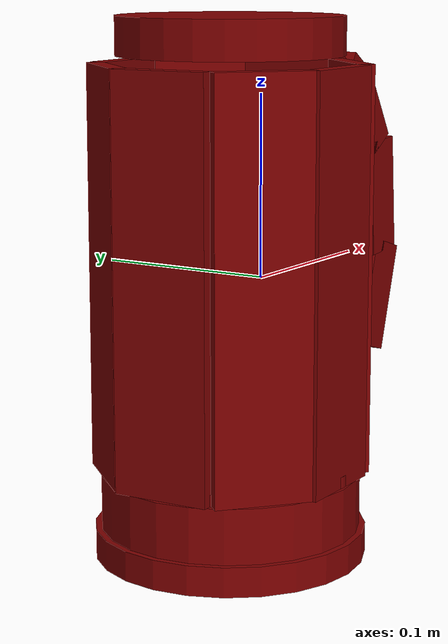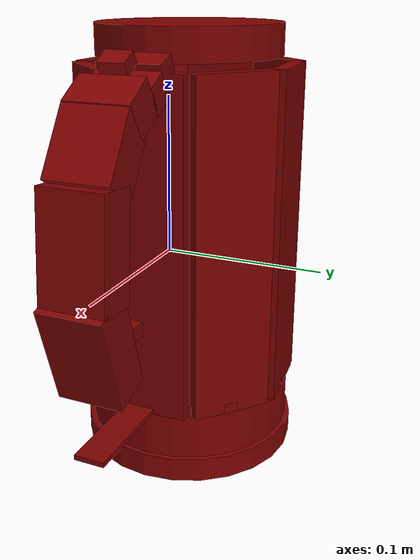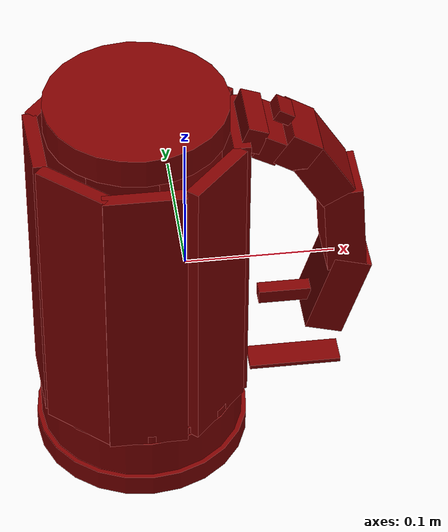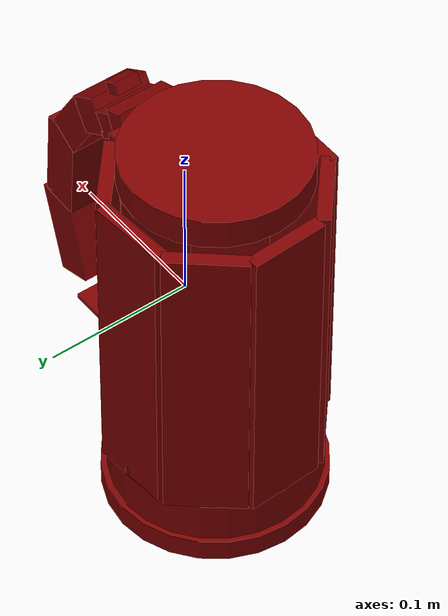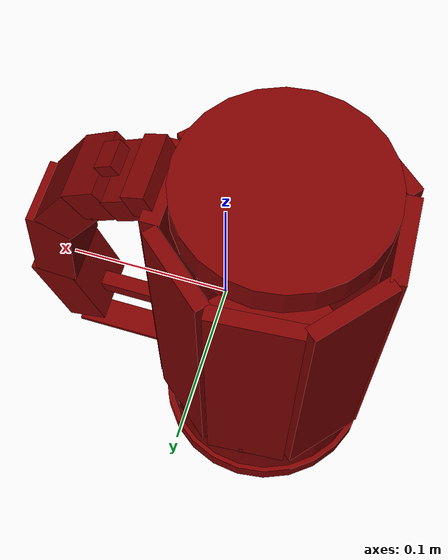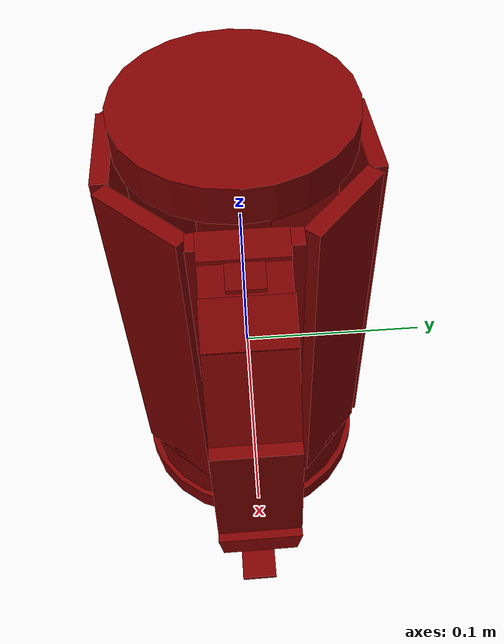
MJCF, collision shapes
<?xml version='1.0' encoding='UTF-8'?>
<mujoco model="model">
  <option timestep="0.002" gravity="0.0 0.0 -9.81"/>
  <compiler angle="radian"/>
  <asset>
    <mesh file="visuals/button_lid.obj" name="button_lid_vis"/>
    <mesh file="visuals/Body001.obj" name="Body001_vis"/>
    <mesh file="visuals/kettle_main.obj" name="kettle_main_vis"/>
    <mesh file="visuals/lid.obj" name="lid_vis"/>
    <mesh file="visuals/switch.obj" name="switch_vis"/>
    <texture file="visuals/T_BC001.png" name="Body001_material" type="2d"/>
    <material name="Body001_material" rgba="1 1 1 1.0" texture="Body001_material" shininess="0.44103819131851196" specular="0.3103448502657381"/>
    <texture file="visuals/T_BC001.png" name="kettle_main_material" type="2d"/>
    <material name="kettle_main_material" rgba="1 1 1 1.0" texture="kettle_main_material" shininess="0.44103819131851196" specular="0.3103448502657381"/>
    <texture file="visuals/T_BC001.png" name="button_lid_material" type="2d"/>
    <material name="button_lid_material" rgba="1 1 1 1.0" texture="button_lid_material" shininess="0.44103819131851196" specular="0.3103448502657381"/>
    <texture file="visuals/T_BC001.png" name="lid_material" type="2d"/>
    <material name="lid_material" rgba="1 1 1 1.0" texture="lid_material" shininess="0.44103819131851196" specular="0.3103448502657381"/>
    <texture file="visuals/T_BC001.png" name="switch_material" type="2d"/>
    <material name="switch_material" rgba="1 1 1 1.0" texture="switch_material" shininess="0.44103819131851196" specular="0.3103448502657381"/>
  </asset>
  <default>
    <default class="visual">
      <geom conaffinity="0" contype="0" group="1" type="mesh"/>
    </default>
    <default class="collision">
      <geom group="0" rgba="0.5 0 0 0.5" density="1.0" solref="0.004 1" solimp="0.998 0.998 0.001"/>
    </default>
    <default class="spawn">
      <geom group="0" rgba="1 1 1 0.5" contype="0" conaffinity="0"/>
      <site group="0" rgba="1 1 1 0.5"/>
    </default>
    <default class="region">
      <geom group="1" conaffinity="0" contype="0" rgba="0 1 0 0" mass="0"/>
    </default>
  </default>
  <worldbody>
    <body>
      <body name="object">
        <geom mesh="Body001_vis" type="mesh" solimp="0.998 0.998 0.001" solref="0.001 1" friction="0.95 0.3 0.1" class="visual" material="Body001_material"/>
        <geom type="cylinder" pos="-0.03099116 0.00000000 -0.13770911" size="0.07322178035974503 0.007990462705492973" quat="1.0 0.0 0.0 0.0" class="collision"/>
        <geom type="cylinder" pos="-0.03099116 0.00000000 -0.11510960" size="0.06989336758852005 0.01493158284574747" quat="1.0 0.0 0.0 0.0" class="collision"/>
        <body name="kettle_main">
          <geom mesh="kettle_main_vis" type="mesh" solimp="0.998 0.998 0.001" solref="0.001 1" friction="0.95 0.3 0.1" class="visual" material="kettle_main_material"/>
          <geom class="collision" type="box" pos="0.04159675 -0.00022555 0.11768026" size="0.008985282853245735 0.020376522094011307 0.0069479867815971375" quat="0.8229597806930542 -4.474678405586019e-09 -0.5680996775627136 -6.885247927357341e-08" name="handle_1"/>
          <geom class="collision" type="box" pos="0.06713136 -0.00006561 -0.03451092" size="0.017660193145275116 0.0049196649342775345 0.004958075936883688" quat="1.0 0.0 0.0 0.0" name="handle_6"/>
          <geom class="collision" type="box" pos="0.07048238 -0.00022555 0.10281562" size="0.012218759395182133 0.020376522094011307 0.011361307464540005" quat="0.8763461709022522 2.5333095621249413e-09 -0.48168182373046875 -6.895119497585256e-08" name="handle_3"/>
          <geom class="collision" type="box" pos="0.08730183 -0.00022556 0.08191373" size="0.012218756601214409 0.020376522094011307 0.02132119983434677" quat="0.9623345732688904 1.800209403768349e-08 -0.2718679904937744 -6.66078676658799e-08" name="handle_4"/>
          <geom class="collision" type="box" pos="0.10350201 -0.00022555 0.03445161" size="0.013097577728331089 0.020376522094011307 0.033003807067871094" quat="0.9993276596069336 3.3238038099625555e-08 -0.036663953214883804 -6.046415990113019e-08" name="handle_main"/>
          <geom class="collision" type="box" pos="0.10100662 -0.00022555 -0.02400314" size="0.013097579590976238 0.020376522094011307 0.031204335391521454" quat="0.9889734387397766 4.380971319051241e-08 0.1480930894613266 -5.330472063747038e-08" name="handle_5"/>
          <geom class="collision" type="box" pos="0.05225657 -0.00022555 0.10820882" size="0.008985282853245735 0.020376522094011307 0.008597247302532196" quat="0.8645140528678894 8.750601909746081e-10 -0.5026086568832397 -6.899210092115027e-08" name="handle_2"/>
          <geom type="box" pos="-0.03311813 -0.06499278 0.00923737" size="0.026498567312955856 0.00454183854162693 0.1083824560046196" quat="1.0 0.0 0.0 0.0" class="collision"/>
          <geom type="box" pos="-0.07539620 -0.04783896 0.00923737" size="0.026498567312955856 0.00454183854162693 0.1083824560046196" quat="0.9364215135574341 0.0 -0.0 -0.3508771061897278" class="collision"/>
          <geom type="box" pos="-0.09635853 -0.00180143 0.00923737" size="0.026498567312955856 0.00454183854162693 0.1083824560046196" quat="0.726161003112793 0.0 -0.0 -0.687524676322937" class="collision"/>
          <geom type="box" pos="-0.07954716 0.04365564 0.00923737" size="0.026498569175601006 0.00454183854162693 0.1083824560046196" quat="0.4175800085067749 0.0 -0.0 -0.9086401462554932" class="collision"/>
          <geom type="box" pos="-0.03455194 0.06493837 0.00923737" size="0.026498567312955856 0.00454183854162693 0.1083824560046196" quat="0.03796101734042168 0.0 -0.0 -0.9992792010307312" class="collision"/>
          <geom type="box" pos="0.01272931 0.04777699 0.00923737" size="0.026498567312955856 0.00454183854162693 0.1083824560046196" quat="0.3515360653400421 0.0 0.0 0.9361743330955505" class="collision"/>
          <geom type="box" pos="0.03364344 0.00087223 0.00923737" size="0.005607093684375286 0.026660215109586716 0.1083824560046196" quat="1.0 0.0 0.0 0.0" class="collision"/>
          <geom type="box" pos="0.01495570 -0.04562156 0.00923737" size="0.026498567312955856 0.00454183854162693 0.1083824560046196" quat="0.9171288013458252 0.0 0.0 0.39859095215797424" class="collision"/>
          <geom type="cylinder" pos="-0.03099116 0.00000000 -0.09607468" size="0.06989336758852005 0.003059305716305971" quat="1.0 0.0 0.0 0.0" class="collision"/>
          <body name="button_lid">
            <joint axis="-0.471878319978714 0.0 -0.8816637992858887" pos="0.06157402 -0.00030860 0.12418738" limited="true" name="button_lid_joint" range="0.0 0.003" type="slide" damping="1" frictionloss="1" armature=".01" stiffness="0.05" springref="-1"/>
            <geom mesh="button_lid_vis" type="mesh" solimp="0.998 0.998 0.001" solref="0.001 1" friction="0.95 0.3 0.1" class="visual" material="button_lid_material"/>
            <geom class="collision" type="box" pos="0.06255781 -0.00022031 0.12495881" size="0.005742234643548727 0.008494440466165543 0.004098129458725452" quat="0.9633238315582275 -7.15139075345081e-15 0.26834145188331604 3.605410725526781e-08" name="button_lid_main"/>
          </body>
          <body name="lid">
            <joint axis="0.0 1.0 0.0" pos="0.03744195 0.00070411 0.13073660" limited="true" name="lid_joint" range="0.0 1.5707963267948966" type="hinge" damping="1" frictionloss="0.1" armature=".01" stiffness="0.05" springref="-5"/>
            <geom mesh="lid_vis" type="mesh" solimp="0.998 0.998 0.001" solref="0.001 1" friction="0.95 0.3 0.1" class="visual" material="lid_material"/>
            <geom class="collision" type="cylinder" pos="-0.03099117 0.00000000 0.13182352" size="0.05991984695196152 0.010244759730994701" quat="1.0 0.0 0.0 0.0" name="lid_main"/>
          </body>
          <body name="switch">
            <joint axis="0.0 0.0 -1.0" pos="0.06127418 -0.00158963 -0.09437688" limited="true" name="switch_joint" range="0.0 0.006999999999999999" type="slide" damping="1" frictionloss="1" armature=".01" stiffness="0.05" springref="-1"/>
            <geom mesh="switch_vis" type="mesh" solimp="0.998 0.998 0.001" solref="0.001 1" friction="0.95 0.3 0.1" class="visual" material="switch_material"/>
            <geom class="collision" type="box" pos="0.07503450 -0.00160795 -0.09426919" size="0.03156135231256485 0.009764294140040874 0.001540598226711154" quat="1.0 0.0 0.0 0.0" name="switch_main"/>
          </body>
        </body>
        <geom class="region" name="reg_main" type="box" pos="0.0003240050000000022 5.4999999998806004e-08 -1.500000000598245e-08" size="0.120328005 0.073375365 0.14638435500000002"/>
      </body>
    </body>
  </worldbody>
  <actuator>
    <motor name="button_lid_joint_actuator" joint="button_lid_joint" gear="0.5"/>
    <motor name="lid_joint_actuator" joint="lid_joint" gear="0.5"/>
    <motor name="switch_joint_actuator" joint="switch_joint" gear="0.5"/>
  </actuator>
</mujoco>
